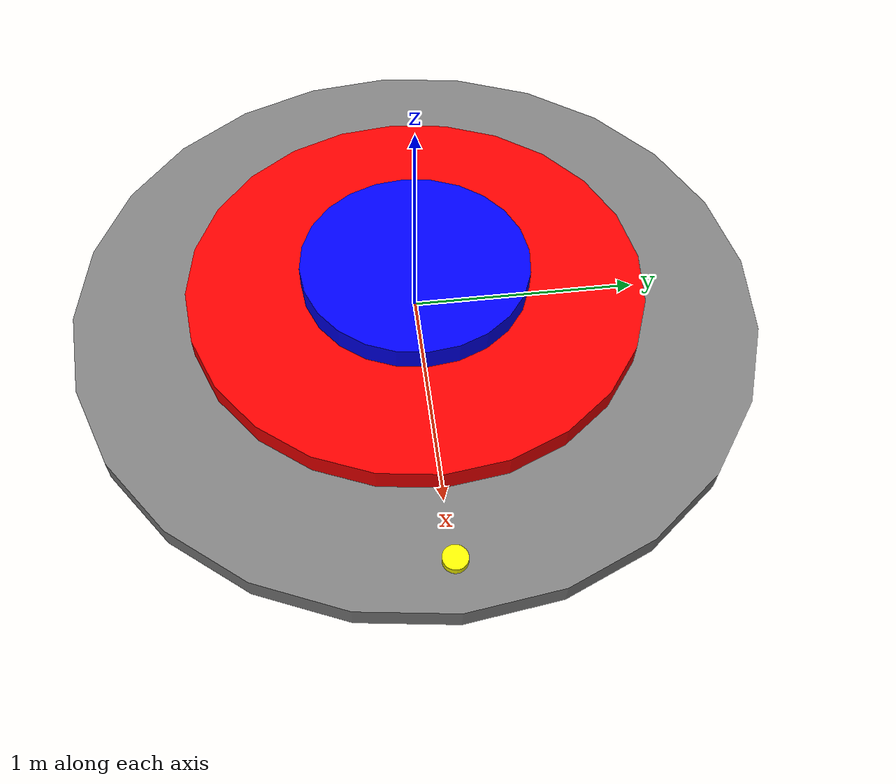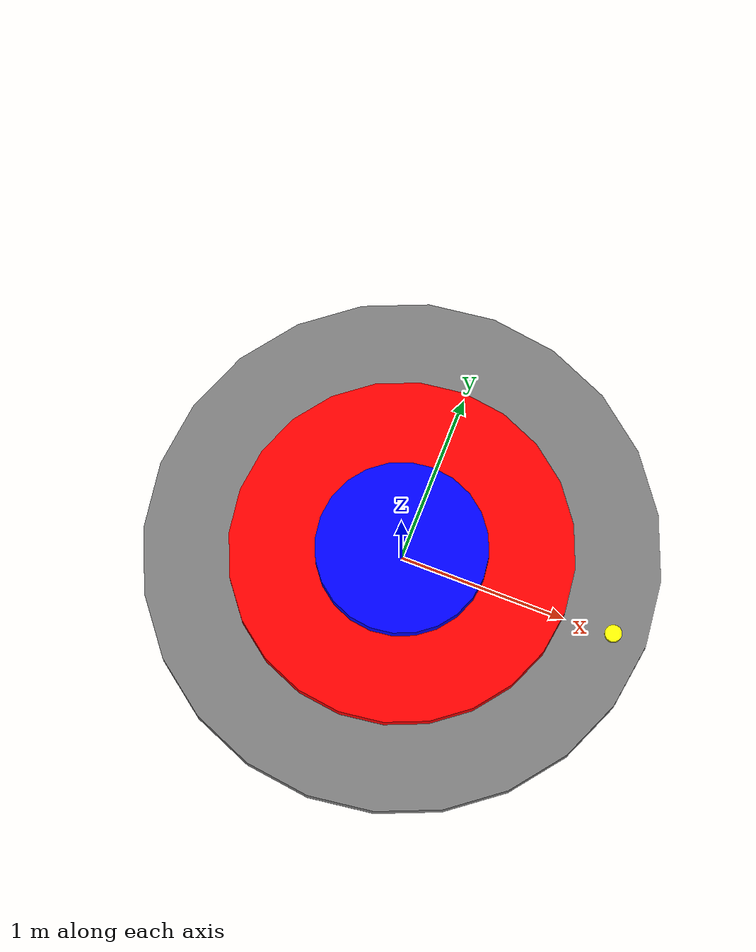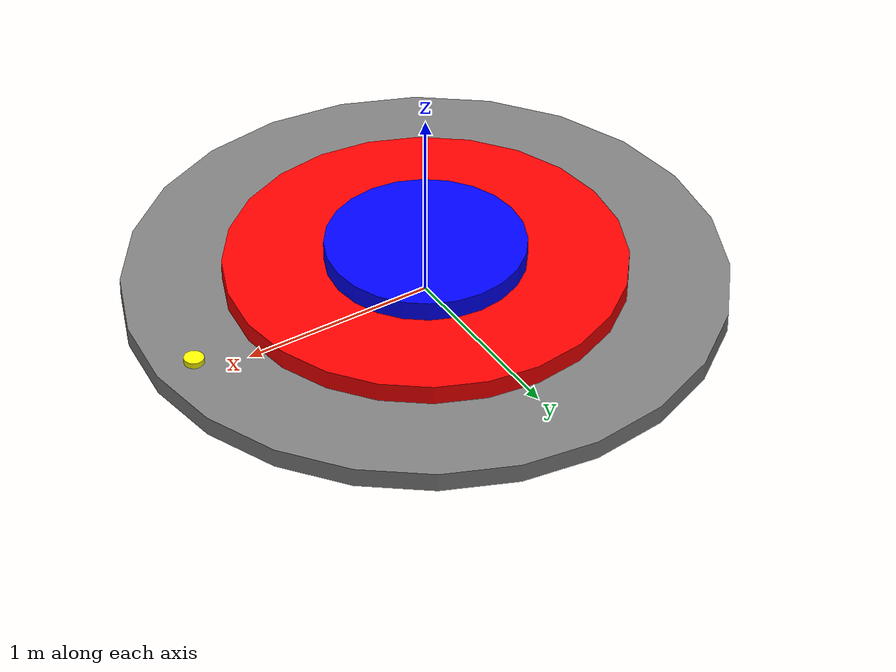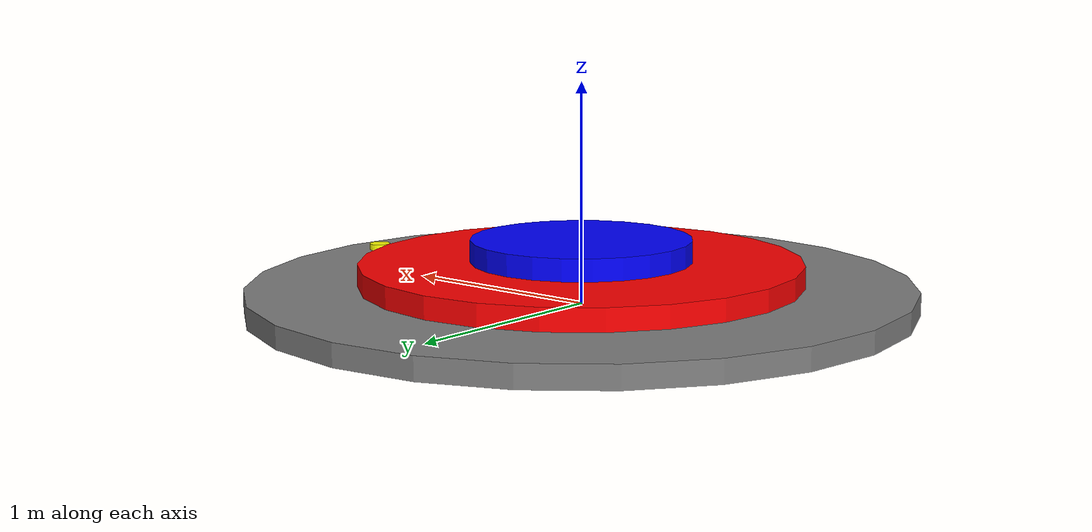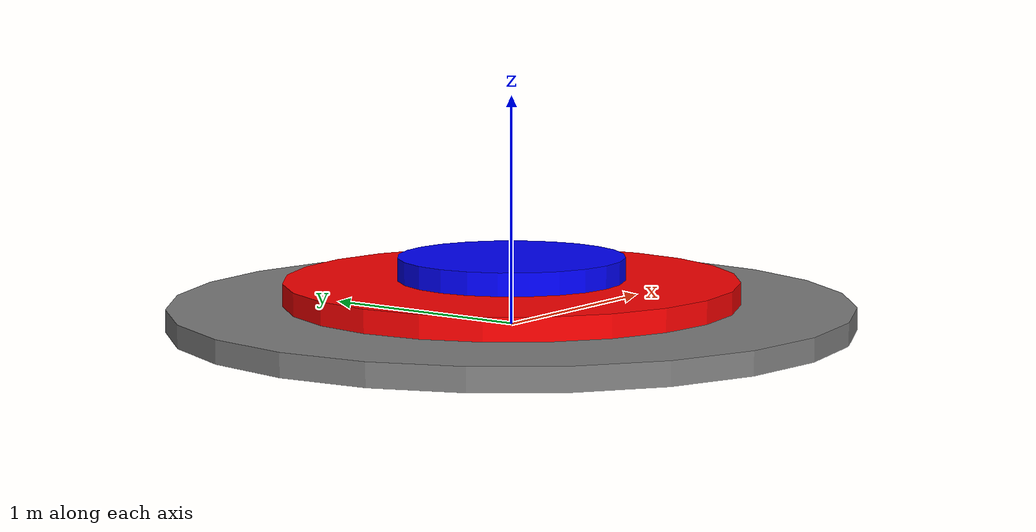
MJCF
<mujoco>
  <asset>
    <material name="gray" rgba="0.5 0.5 0.5 1"/>
    <material name="red" rgba="1 0 0 1"/>
    <material name="blue" rgba="0 0 1 1"/>
    <material name="yellow" rgba="1 1 0 1"/>
  </asset>

  <worldbody>
    <geom type="cylinder" size="1.5 0.05" pos="0 0 0.05" material="gray"/>
    <geom type="cylinder" size="1.0 0.05" pos="0 0 0.15" material="red"/>
    <geom type="cylinder" size="0.5 0.05" pos="0 0 0.25" material="blue"/>

    <!-- 黄色コインテスト -->
    <geom type="cylinder" size="0.05 0.02" pos="1.3 0.0 0.11" material="yellow"/>
  </worldbody>
</mujoco>
